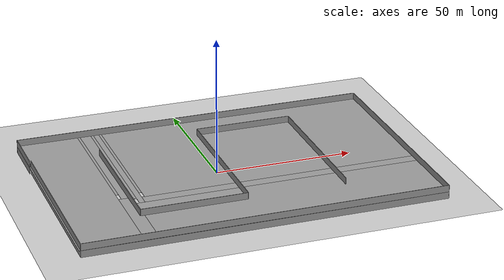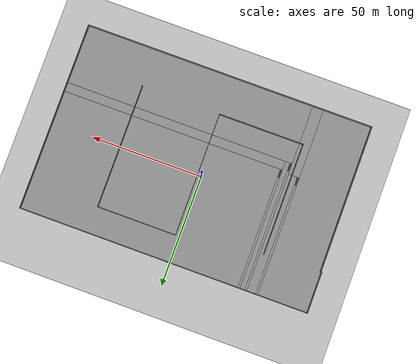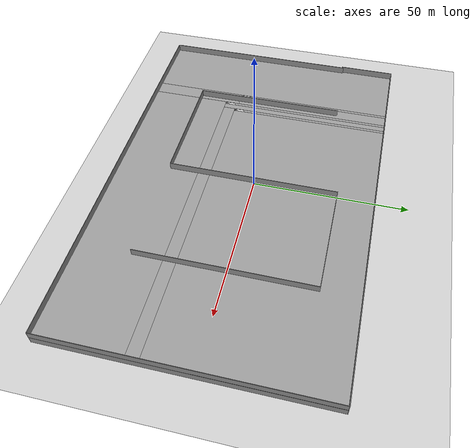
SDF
<sdf version="1.7">
 <world name="default">
  <light name="sun" type="directional">
   <pose>0 0 10 0 -0 0</pose>
   <diffuse>0.8 0.8 0.8 1</diffuse>
   <specular>0.2 0.2 0.2 1</specular>
   <attenuation>
    <range>1000</range>
    <constant>0.9</constant>
    <linear>0.01</linear>
    <quadratic>0.001</quadratic>
   </attenuation>
   <direction>-0.5 0.1 -0.9</direction>
   <spot><inner_angle>0</inner_angle><outer_angle>0</outer_angle><falloff>0</falloff></spot>
  </light>
  <model name="ground_plane">
   <static>1</static>
   <link name="link">
    <collision name="collision">
     <geometry><plane><normal>0 0 1</normal><size>100 100</size></plane></geometry>
     <surface><friction><ode><mu>100</mu><mu2>50</mu2></ode></friction></surface>
    </collision>
    <visual name="visual">
     <cast_shadows>0</cast_shadows>
     <geometry><plane><normal>0 0 1</normal><size>100 100</size></plane></geometry>
     <material>
      <script><uri>file://media/materials/scripts/gazebo.material</uri><name>Gazebo/Grey</name></script>
     </material>
    </visual>
   </link>
  </model>
  <gravity>0 0 -9.8</gravity>
  <magnetic_field>6e-06 2.3e-05 -4.2e-05</magnetic_field>
  <atmosphere type="adiabatic"/>
  <physics type="ode">
   <max_step_size>0.001</max_step_size>
   <real_time_factor>1</real_time_factor>
   <real_time_update_rate>1000</real_time_update_rate>
  </physics>
  <scene><ambient>0.4 0.4 0.4 1</ambient><background>0.7 0.7 0.7 1</background><shadows>1</shadows></scene>
  <audio><device>default</device></audio>
  <spherical_coordinates>
   <surface_model>EARTH_WGS84</surface_model>
   <latitude_deg>0</latitude_deg>
   <longitude_deg>0</longitude_deg>
   <elevation>0</elevation>
   <heading_deg>0</heading_deg>
  </spherical_coordinates>
  <model name="play">
   <pose>3.04218 -2.837 0 0 -0 0</pose>
   <link name="Floor_1">
    <pose>-2e-06 0 2.5 0 -0 0</pose>
    <visual name="Floor_1_Visual_0">
     <pose>-54.0036 0 0.05 0 -0 0</pose>
     <geometry><box><size>22.2427 84.25 0.1</size></box></geometry>
     <material>
      <script><uri>file://media/materials/scripts/gazebo.material</uri><name>Gazebo/Grey</name></script>
      <ambient>1 1 1 1</ambient>
     </material>
     <meta><layer>1</layer></meta>
    </visual>
    <collision name="Floor_1_Collision_0">
     <geometry><box><size>22.2427 84.25 0.1</size></box></geometry>
     <pose>-54.0036 0 0.05 0 -0 0</pose>
    </collision>
    <visual name="Floor_1_Visual_1">
     <pose>-40.3931 -26.5254 0.05 0 -0 0</pose>
     <geometry><box><size>4.97829 31.1992 0.1</size></box></geometry>
     <material>
      <script><uri>file://media/materials/scripts/gazebo.material</uri><name>Gazebo/Grey</name></script>
      <ambient>1 1 1 1</ambient>
     </material>
     <meta><layer>1</layer></meta>
    </visual>
    <collision name="Floor_1_Collision_1">
     <geometry><box><size>4.97829 31.1992 0.1</size></box></geometry>
     <pose>-40.3931 -26.5254 0.05 0 -0 0</pose>
    </collision>
    <visual name="Floor_1_Visual_2">
     <pose>13.6105 -28.8901 0.05 0 -0 0</pose>
     <geometry><box><size>103.029 26.4698 0.1</size></box></geometry>
     <material>
      <script><uri>file://media/materials/scripts/gazebo.material</uri><name>Gazebo/Grey</name></script>
      <ambient>1 1 1 1</ambient>
     </material>
     <meta><layer>1</layer></meta>
    </visual>
    <collision name="Floor_1_Collision_2">
     <geometry><box><size>103.029 26.4698 0.1</size></box></geometry>
     <pose>13.6105 -28.8901 0.05 0 -0 0</pose>
    </collision>
    <visual name="Floor_1_Visual_3">
     <pose>-35.9105 13.2349 0.05 0 -0 0</pose>
     <geometry><box><size>1.98698 57.7802 0.1</size></box></geometry>
     <material>
      <script><uri>file://media/materials/scripts/gazebo.material</uri><name>Gazebo/Grey</name></script>
      <ambient>1 1 1 1</ambient>
     </material>
     <meta><layer>1</layer></meta>
    </visual>
    <collision name="Floor_1_Collision_3">
     <geometry><box><size>1.98698 57.7802 0.1</size></box></geometry>
     <pose>-35.9105 13.2349 0.05 0 -0 0</pose>
    </collision>
    <visual name="Floor_1_Visual_4">
     <pose>15.104 -13.6639 0.05 0 -0 0</pose>
     <geometry><box><size>100.042 3.98263 0.1</size></box></geometry>
     <material>
      <script><uri>file://media/materials/scripts/gazebo.material</uri><name>Gazebo/Grey</name></script>
      <ambient>1 1 1 1</ambient>
     </material>
     <meta><layer>1</layer></meta>
    </visual>
    <collision name="Floor_1_Collision_4">
     <geometry><box><size>100.042 3.98263 0.1</size></box></geometry>
     <pose>15.104 -13.6639 0.05 0 -0 0</pose>
    </collision>
    <visual name="Floor_1_Visual_5">
     <pose>-37.404 14.9849 0.05 0 -0 0</pose>
     <geometry><box><size>1 54.2802 0.1</size></box></geometry>
     <material>
      <script><uri>file://media/materials/scripts/gazebo.material</uri><name>Gazebo/Grey</name></script>
      <ambient>1 1 1 1</ambient>
     </material>
     <meta><layer>1</layer></meta>
    </visual>
    <collision name="Floor_1_Collision_5">
     <geometry><box><size>1 54.2802 0.1</size></box></geometry>
     <pose>-37.404 14.9849 0.05 0 -0 0</pose>
    </collision>
    <visual name="Floor_1_Visual_6">
     <pose>15.604 15.2262 0.05 0 -0 0</pose>
     <geometry><box><size>99.042 53.7976 0.1</size></box></geometry>
     <material>
      <script><uri>file://media/materials/scripts/gazebo.material</uri><name>Gazebo/Grey</name></script>
      <ambient>1 1 1 1</ambient>
     </material>
     <meta><layer>1</layer></meta>
    </visual>
    <collision name="Floor_1_Collision_6">
     <geometry><box><size>99.042 53.7976 0.1</size></box></geometry>
     <pose>15.604 15.2262 0.05 0 -0 0</pose>
    </collision>
    <visual name="Floor_1_Visual_7">
     <pose>-39.8931 15.5996 0.05 0 -0 0</pose>
     <geometry><box><size>3.97829 53.0508 0.1</size></box></geometry>
     <material>
      <script><uri>file://media/materials/scripts/gazebo.material</uri><name>Gazebo/Grey</name></script>
      <ambient>1 1 1 1</ambient>
     </material>
     <meta><layer>1</layer></meta>
    </visual>
    <collision name="Floor_1_Collision_7">
     <geometry><box><size>3.97829 53.0508 0.1</size></box></geometry>
     <pose>-39.8931 15.5996 0.05 0 -0 0</pose>
    </collision>
    <visual name="Floor_1_Visual_8">
     <pose>-34.417 16.9762 0.05 0 -0 0</pose>
     <geometry><box><size>1 50.2976 0.1</size></box></geometry>
     <material>
      <script><uri>file://media/materials/scripts/gazebo.material</uri><name>Gazebo/Grey</name></script>
      <ambient>1 1 1 1</ambient>
     </material>
     <meta><layer>1</layer></meta>
    </visual>
    <collision name="Floor_1_Collision_8">
     <geometry><box><size>1 50.2976 0.1</size></box></geometry>
     <pose>-34.417 16.9762 0.05 0 -0 0</pose>
    </collision>
    <visual name="Floor_1_Visual_9">
     <pose>-42.3823 17.3496 0.05 0 -0 0</pose>
     <geometry><box><size>1 49.5508 0.1</size></box></geometry>
     <material>
      <script><uri>file://media/materials/scripts/gazebo.material</uri><name>Gazebo/Grey</name></script>
      <ambient>1 1 1 1</ambient>
     </material>
     <meta><layer>1</layer></meta>
    </visual>
    <collision name="Floor_1_Collision_9">
     <geometry><box><size>1 49.5508 0.1</size></box></geometry>
     <pose>-42.3823 17.3496 0.05 0 -0 0</pose>
    </collision>
   </link>
   <link name="Stairs_0">
    <visual name="Stairs_0_Visual_0">
     <pose>-34.417 -8.28924 0.083333 0 -0 0</pose>
     <geometry><box><size>1 0.233333 0.166667</size></box></geometry>
     <material>
      <script><uri>file://media/materials/scripts/gazebo.material</uri><name>Gazebo/Grey</name></script>
      <ambient>1 1 1 1</ambient>
     </material>
     <meta><layer>0</layer></meta>
    </visual>
    <collision name="Stairs_0_Collision_0">
     <geometry><box><size>1 0.233333 0.166667</size></box></geometry>
     <pose>-34.417 -8.28924 0.083333 0 -0 0</pose>
    </collision>
    <visual name="Stairs_0_Visual_1">
     <pose>-34.417 -8.52257 0.25 0 -0 0</pose>
     <geometry><box><size>1 0.233333 0.166667</size></box></geometry>
     <material>
      <script><uri>file://media/materials/scripts/gazebo.material</uri><name>Gazebo/Grey</name></script>
      <ambient>1 1 1 1</ambient>
     </material>
     <meta><layer>0</layer></meta>
    </visual>
    <collision name="Stairs_0_Collision_1">
     <geometry><box><size>1 0.233333 0.166667</size></box></geometry>
     <pose>-34.417 -8.52257 0.25 0 -0 0</pose>
    </collision>
    <visual name="Stairs_0_Visual_2">
     <pose>-34.417 -8.7559 0.416667 0 -0 0</pose>
     <geometry><box><size>1 0.233333 0.166667</size></box></geometry>
     <material>
      <script><uri>file://media/materials/scripts/gazebo.material</uri><name>Gazebo/Grey</name></script>
      <ambient>1 1 1 1</ambient>
     </material>
     <meta><layer>0</layer></meta>
    </visual>
    <collision name="Stairs_0_Collision_2">
     <geometry><box><size>1 0.233333 0.166667</size></box></geometry>
     <pose>-34.417 -8.7559 0.416667 0 -0 0</pose>
    </collision>
    <visual name="Stairs_0_Visual_3">
     <pose>-34.417 -8.98924 0.583333 0 -0 0</pose>
     <geometry><box><size>1 0.233333 0.166667</size></box></geometry>
     <material>
      <script><uri>file://media/materials/scripts/gazebo.material</uri><name>Gazebo/Grey</name></script>
      <ambient>1 1 1 1</ambient>
     </material>
     <meta><layer>0</layer></meta>
    </visual>
    <collision name="Stairs_0_Collision_3">
     <geometry><box><size>1 0.233333 0.166667</size></box></geometry>
     <pose>-34.417 -8.98924 0.583333 0 -0 0</pose>
    </collision>
    <visual name="Stairs_0_Visual_4">
     <pose>-34.417 -9.22257 0.75 0 -0 0</pose>
     <geometry><box><size>1 0.233333 0.166667</size></box></geometry>
     <material>
      <script><uri>file://media/materials/scripts/gazebo.material</uri><name>Gazebo/Grey</name></script>
      <ambient>1 1 1 1</ambient>
     </material>
     <meta><layer>0</layer></meta>
    </visual>
    <collision name="Stairs_0_Collision_4">
     <geometry><box><size>1 0.233333 0.166667</size></box></geometry>
     <pose>-34.417 -9.22257 0.75 0 -0 0</pose>
    </collision>
    <visual name="Stairs_0_Visual_5">
     <pose>-34.417 -9.4559 0.916667 0 -0 0</pose>
     <geometry><box><size>1 0.233333 0.166667</size></box></geometry>
     <material>
      <script><uri>file://media/materials/scripts/gazebo.material</uri><name>Gazebo/Grey</name></script>
      <ambient>1 1 1 1</ambient>
     </material>
     <meta><layer>0</layer></meta>
    </visual>
    <collision name="Stairs_0_Collision_5">
     <geometry><box><size>1 0.233333 0.166667</size></box></geometry>
     <pose>-34.417 -9.4559 0.916667 0 -0 0</pose>
    </collision>
    <visual name="Stairs_0_Visual_6">
     <pose>-34.417 -9.68924 1.08333 0 -0 0</pose>
     <geometry><box><size>1 0.233333 0.166667</size></box></geometry>
     <material>
      <script><uri>file://media/materials/scripts/gazebo.material</uri><name>Gazebo/Grey</name></script>
      <ambient>1 1 1 1</ambient>
     </material>
     <meta><layer>0</layer></meta>
    </visual>
    <collision name="Stairs_0_Collision_6">
     <geometry><box><size>1 0.233333 0.166667</size></box></geometry>
     <pose>-34.417 -9.68924 1.08333 0 -0 0</pose>
    </collision>
    <visual name="Stairs_0_Visual_7">
     <pose>-34.417 -9.92257 1.25 0 -0 0</pose>
     <geometry><box><size>1 0.233333 0.166667</size></box></geometry>
     <material>
      <script><uri>file://media/materials/scripts/gazebo.material</uri><name>Gazebo/Grey</name></script>
      <ambient>1 1 1 1</ambient>
     </material>
     <meta><layer>0</layer></meta>
    </visual>
    <collision name="Stairs_0_Collision_7">
     <geometry><box><size>1 0.233333 0.166667</size></box></geometry>
     <pose>-34.417 -9.92257 1.25 0 -0 0</pose>
    </collision>
    <visual name="Stairs_0_Visual_8">
     <pose>-34.417 -10.1559 1.41667 0 -0 0</pose>
     <geometry><box><size>1 0.233333 0.166667</size></box></geometry>
     <material>
      <script><uri>file://media/materials/scripts/gazebo.material</uri><name>Gazebo/Grey</name></script>
      <ambient>1 1 1 1</ambient>
     </material>
     <meta><layer>0</layer></meta>
    </visual>
    <collision name="Stairs_0_Collision_8">
     <geometry><box><size>1 0.233333 0.166667</size></box></geometry>
     <pose>-34.417 -10.1559 1.41667 0 -0 0</pose>
    </collision>
    <visual name="Stairs_0_Visual_9">
     <pose>-34.417 -10.3892 1.58333 0 -0 0</pose>
     <geometry><box><size>1 0.233333 0.166667</size></box></geometry>
     <material>
      <script><uri>file://media/materials/scripts/gazebo.material</uri><name>Gazebo/Grey</name></script>
      <ambient>1 1 1 1</ambient>
     </material>
     <meta><layer>0</layer></meta>
    </visual>
    <collision name="Stairs_0_Collision_9">
     <geometry><box><size>1 0.233333 0.166667</size></box></geometry>
     <pose>-34.417 -10.3892 1.58333 0 -0 0</pose>
    </collision>
    <visual name="Stairs_0_Visual_10">
     <pose>-34.417 -10.6226 1.75 0 -0 0</pose>
     <geometry><box><size>1 0.233333 0.166667</size></box></geometry>
     <material>
      <script><uri>file://media/materials/scripts/gazebo.material</uri><name>Gazebo/Grey</name></script>
      <ambient>1 1 1 1</ambient>
     </material>
     <meta><layer>0</layer></meta>
    </visual>
    <collision name="Stairs_0_Collision_10">
     <geometry><box><size>1 0.233333 0.166667</size></box></geometry>
     <pose>-34.417 -10.6226 1.75 0 -0 0</pose>
    </collision>
    <visual name="Stairs_0_Visual_11">
     <pose>-34.417 -10.8559 1.91667 0 -0 0</pose>
     <geometry><box><size>1 0.233333 0.166667</size></box></geometry>
     <material>
      <script><uri>file://media/materials/scripts/gazebo.material</uri><name>Gazebo/Grey</name></script>
      <ambient>1 1 1 1</ambient>
     </material>
     <meta><layer>0</layer></meta>
    </visual>
    <collision name="Stairs_0_Collision_11">
     <geometry><box><size>1 0.233333 0.166667</size></box></geometry>
     <pose>-34.417 -10.8559 1.91667 0 -0 0</pose>
    </collision>
    <visual name="Stairs_0_Visual_12">
     <pose>-34.417 -11.0892 2.08333 0 -0 0</pose>
     <geometry><box><size>1 0.233333 0.166667</size></box></geometry>
     <material>
      <script><uri>file://media/materials/scripts/gazebo.material</uri><name>Gazebo/Grey</name></script>
      <ambient>1 1 1 1</ambient>
     </material>
     <meta><layer>0</layer></meta>
    </visual>
    <collision name="Stairs_0_Collision_12">
     <geometry><box><size>1 0.233333 0.166667</size></box></geometry>
     <pose>-34.417 -11.0892 2.08333 0 -0 0</pose>
    </collision>
    <visual name="Stairs_0_Visual_13">
     <pose>-34.417 -11.3226 2.25 0 -0 0</pose>
     <geometry><box><size>1 0.233333 0.166667</size></box></geometry>
     <material>
      <script><uri>file://media/materials/scripts/gazebo.material</uri><name>Gazebo/Grey</name></script>
      <ambient>1 1 1 1</ambient>
     </material>
     <meta><layer>0</layer></meta>
    </visual>
    <collision name="Stairs_0_Collision_13">
     <geometry><box><size>1 0.233333 0.166667</size></box></geometry>
     <pose>-34.417 -11.3226 2.25 0 -0 0</pose>
    </collision>
    <visual name="Stairs_0_Visual_14">
     <pose>-34.417 -11.5559 2.41667 0 -0 0</pose>
     <geometry><box><size>1 0.233333 0.166667</size></box></geometry>
     <material>
      <script><uri>file://media/materials/scripts/gazebo.material</uri><name>Gazebo/Grey</name></script>
      <ambient>1 1 1 1</ambient>
     </material>
     <meta><layer>0</layer></meta>
    </visual>
    <collision name="Stairs_0_Collision_14">
     <geometry><box><size>1 0.233333 0.166667</size></box></geometry>
     <pose>-34.417 -11.5559 2.41667 0 -0 0</pose>
    </collision>
   </link>
   <link name="Stairs_1">
    <visual name="Stairs_1_Visual_0">
     <pose>-42.3823 -7.54249 0.083333 0 -0 0</pose>
     <geometry><box><size>1 0.233333 0.166667</size></box></geometry>
     <material>
      <script><uri>file://media/materials/scripts/gazebo.material</uri><name>Gazebo/Grey</name></script>
      <ambient>1 1 1 1</ambient>
     </material>
     <meta><layer>0</layer></meta>
    </visual>
    <collision name="Stairs_1_Collision_0">
     <geometry><box><size>1 0.233333 0.166667</size></box></geometry>
     <pose>-42.3823 -7.54249 0.083333 0 -0 0</pose>
    </collision>
    <visual name="Stairs_1_Visual_1">
     <pose>-42.3823 -7.77583 0.25 0 -0 0</pose>
     <geometry><box><size>1 0.233333 0.166667</size></box></geometry>
     <material>
      <script><uri>file://media/materials/scripts/gazebo.material</uri><name>Gazebo/Grey</name></script>
      <ambient>1 1 1 1</ambient>
     </material>
     <meta><layer>0</layer></meta>
    </visual>
    <collision name="Stairs_1_Collision_1">
     <geometry><box><size>1 0.233333 0.166667</size></box></geometry>
     <pose>-42.3823 -7.77583 0.25 0 -0 0</pose>
    </collision>
    <visual name="Stairs_1_Visual_2">
     <pose>-42.3823 -8.00916 0.416667 0 -0 0</pose>
     <geometry><box><size>1 0.233333 0.166667</size></box></geometry>
     <material>
      <script><uri>file://media/materials/scripts/gazebo.material</uri><name>Gazebo/Grey</name></script>
      <ambient>1 1 1 1</ambient>
     </material>
     <meta><layer>0</layer></meta>
    </visual>
    <collision name="Stairs_1_Collision_2">
     <geometry><box><size>1 0.233333 0.166667</size></box></geometry>
     <pose>-42.3823 -8.00916 0.416667 0 -0 0</pose>
    </collision>
    <visual name="Stairs_1_Visual_3">
     <pose>-42.3823 -8.24249 0.583333 0 -0 0</pose>
     <geometry><box><size>1 0.233333 0.166667</size></box></geometry>
     <material>
      <script><uri>file://media/materials/scripts/gazebo.material</uri><name>Gazebo/Grey</name></script>
      <ambient>1 1 1 1</ambient>
     </material>
     <meta><layer>0</layer></meta>
    </visual>
    <collision name="Stairs_1_Collision_3">
     <geometry><box><size>1 0.233333 0.166667</size></box></geometry>
     <pose>-42.3823 -8.24249 0.583333 0 -0 0</pose>
    </collision>
    <visual name="Stairs_1_Visual_4">
     <pose>-42.3823 -8.47583 0.75 0 -0 0</pose>
     <geometry><box><size>1 0.233333 0.166667</size></box></geometry>
     <material>
      <script><uri>file://media/materials/scripts/gazebo.material</uri><name>Gazebo/Grey</name></script>
      <ambient>1 1 1 1</ambient>
     </material>
     <meta><layer>0</layer></meta>
    </visual>
    <collision name="Stairs_1_Collision_4">
     <geometry><box><size>1 0.233333 0.166667</size></box></geometry>
     <pose>-42.3823 -8.47583 0.75 0 -0 0</pose>
    </collision>
    <visual name="Stairs_1_Visual_5">
     <pose>-42.3823 -8.70916 0.916667 0 -0 0</pose>
     <geometry><box><size>1 0.233333 0.166667</size></box></geometry>
     <material>
      <script><uri>file://media/materials/scripts/gazebo.material</uri><name>Gazebo/Grey</name></script>
      <ambient>1 1 1 1</ambient>
     </material>
     <meta><layer>0</layer></meta>
    </visual>
    <collision name="Stairs_1_Collision_5">
     <geometry><box><size>1 0.233333 0.166667</size></box></geometry>
     <pose>-42.3823 -8.70916 0.916667 0 -0 0</pose>
    </collision>
    <visual name="Stairs_1_Visual_6">
     <pose>-42.3823 -8.94249 1.08333 0 -0 0</pose>
     <geometry><box><size>1 0.233333 0.166667</size></box></geometry>
     <material>
      <script><uri>file://media/materials/scripts/gazebo.material</uri><name>Gazebo/Grey</name></script>
      <ambient>1 1 1 1</ambient>
     </material>
     <meta><layer>0</layer></meta>
    </visual>
    <collision name="Stairs_1_Collision_6">
     <geometry><box><size>1 0.233333 0.166667</size></box></geometry>
     <pose>-42.3823 -8.94249 1.08333 0 -0 0</pose>
    </collision>
    <visual name="Stairs_1_Visual_7">
     <pose>-42.3823 -9.17583 1.25 0 -0 0</pose>
     <geometry><box><size>1 0.233333 0.166667</size></box></geometry>
     <material>
      <script><uri>file://media/materials/scripts/gazebo.material</uri><name>Gazebo/Grey</name></script>
      <ambient>1 1 1 1</ambient>
     </material>
     <meta><layer>0</layer></meta>
    </visual>
    <collision name="Stairs_1_Collision_7">
     <geometry><box><size>1 0.233333 0.166667</size></box></geometry>
     <pose>-42.3823 -9.17583 1.25 0 -0 0</pose>
    </collision>
    <visual name="Stairs_1_Visual_8">
     <pose>-42.3823 -9.40916 1.41667 0 -0 0</pose>
     <geometry><box><size>1 0.233333 0.166667</size></box></geometry>
     <material>
      <script><uri>file://media/materials/scripts/gazebo.material</uri><name>Gazebo/Grey</name></script>
      <ambient>1 1 1 1</ambient>
     </material>
     <meta><layer>0</layer></meta>
    </visual>
    <collision name="Stairs_1_Collision_8">
     <geometry><box><size>1 0.233333 0.166667</size></box></geometry>
     <pose>-42.3823 -9.40916 1.41667 0 -0 0</pose>
    </collision>
    <visual name="Stairs_1_Visual_9">
     <pose>-42.3823 -9.64249 1.58333 0 -0 0</pose>
     <geometry><box><size>1 0.233333 0.166667</size></box></geometry>
     <material>
      <script><uri>file://media/materials/scripts/gazebo.material</uri><name>Gazebo/Grey</name></script>
      <ambient>1 1 1 1</ambient>
     </material>
     <meta><layer>0</layer></meta>
    </visual>
    <collision name="Stairs_1_Collision_9">
     <geometry><box><size>1 0.233333 0.166667</size></box></geometry>
     <pose>-42.3823 -9.64249 1.58333 0 -0 0</pose>
    </collision>
    <visual name="Stairs_1_Visual_10">
     <pose>-42.3823 -9.87583 1.75 0 -0 0</pose>
     <geometry><box><size>1 0.233333 0.166667</size></box></geometry>
     <material>
      <script><uri>file://media/materials/scripts/gazebo.material</uri><name>Gazebo/Grey</name></script>
      <ambient>1 1 1 1</ambient>
     </material>
     <meta><layer>0</layer></meta>
    </visual>
    <collision name="Stairs_1_Collision_10">
     <geometry><box><size>1 0.233333 0.166667</size></box></geometry>
     <pose>-42.3823 -9.87583 1.75 0 -0 0</pose>
    </collision>
    <visual name="Stairs_1_Visual_11">
     <pose>-42.3823 -10.1092 1.91667 0 -0 0</pose>
     <geometry><box><size>1 0.233333 0.166667</size></box></geometry>
     <material>
      <script><uri>file://media/materials/scripts/gazebo.material</uri><name>Gazebo/Grey</name></script>
      <ambient>1 1 1 1</ambient>
     </material>
     <meta><layer>0</layer></meta>
    </visual>
    <collision name="Stairs_1_Collision_11">
     <geometry><box><size>1 0.233333 0.166667</size></box></geometry>
     <pose>-42.3823 -10.1092 1.91667 0 -0 0</pose>
    </collision>
    <visual name="Stairs_1_Visual_12">
     <pose>-42.3823 -10.3425 2.08333 0 -0 0</pose>
     <geometry><box><size>1 0.233333 0.166667</size></box></geometry>
     <material>
      <script><uri>file://media/materials/scripts/gazebo.material</uri><name>Gazebo/Grey</name></script>
      <ambient>1 1 1 1</ambient>
     </material>
     <meta><layer>0</layer></meta>
    </visual>
    <collision name="Stairs_1_Collision_12">
     <geometry><box><size>1 0.233333 0.166667</size></box></geometry>
     <pose>-42.3823 -10.3425 2.08333 0 -0 0</pose>
    </collision>
    <visual name="Stairs_1_Visual_13">
     <pose>-42.3823 -10.5758 2.25 0 -0 0</pose>
     <geometry><box><size>1 0.233333 0.166667</size></box></geometry>
     <material>
      <script><uri>file://media/materials/scripts/gazebo.material</uri><name>Gazebo/Grey</name></script>
      <ambient>1 1 1 1</ambient>
     </material>
     <meta><layer>0</layer></meta>
    </visual>
    <collision name="Stairs_1_Collision_13">
     <geometry><box><size>1 0.233333 0.166667</size></box></geometry>
     <pose>-42.3823 -10.5758 2.25 0 -0 0</pose>
    </collision>
    <visual name="Stairs_1_Visual_14">
     <pose>-42.3823 -10.8092 2.41667 0 -0 0</pose>
     <geometry><box><size>1 0.233333 0.166667</size></box></geometry>
     <material>
      <script><uri>file://media/materials/scripts/gazebo.material</uri><name>Gazebo/Grey</name></script>
      <ambient>1 1 1 1</ambient>
     </material>
     <meta><layer>0</layer></meta>
    </visual>
    <collision name="Stairs_1_Collision_14">
     <geometry><box><size>1 0.233333 0.166667</size></box></geometry>
     <pose>-42.3823 -10.8092 2.41667 0 -0 0</pose>
    </collision>
   </link>
   <link name="Stairs_3">
    <visual name="Stairs_3_Visual_0">
     <pose>-37.404 -12.2719 0.083333 0 -0 0</pose>
     <geometry><box><size>1 0.233333 0.166667</size></box></geometry>
     <material>
      <script><uri>file://media/materials/scripts/gazebo.material</uri><name>Gazebo/Grey</name></script>
      <ambient>1 1 1 1</ambient>
     </material>
     <meta><layer>0</layer></meta>
    </visual>
    <collision name="Stairs_3_Collision_0">
     <geometry><box><size>1 0.233333 0.166667</size></box></geometry>
     <pose>-37.404 -12.2719 0.083333 0 -0 0</pose>
    </collision>
    <visual name="Stairs_3_Visual_1">
     <pose>-37.404 -12.5052 0.25 0 -0 0</pose>
     <geometry><box><size>1 0.233333 0.166667</size></box></geometry>
     <material>
      <script><uri>file://media/materials/scripts/gazebo.material</uri><name>Gazebo/Grey</name></script>
      <ambient>1 1 1 1</ambient>
     </material>
     <meta><layer>0</layer></meta>
    </visual>
    <collision name="Stairs_3_Collision_1">
     <geometry><box><size>1 0.233333 0.166667</size></box></geometry>
     <pose>-37.404 -12.5052 0.25 0 -0 0</pose>
    </collision>
    <visual name="Stairs_3_Visual_2">
     <pose>-37.404 -12.7385 0.416667 0 -0 0</pose>
     <geometry><box><size>1 0.233333 0.166667</size></box></geometry>
     <material>
      <script><uri>file://media/materials/scripts/gazebo.material</uri><name>Gazebo/Grey</name></script>
      <ambient>1 1 1 1</ambient>
     </material>
     <meta><layer>0</layer></meta>
    </visual>
    <collision name="Stairs_3_Collision_2">
     <geometry><box><size>1 0.233333 0.166667</size></box></geometry>
     <pose>-37.404 -12.7385 0.416667 0 -0 0</pose>
    </collision>
    <visual name="Stairs_3_Visual_3">
     <pose>-37.404 -12.9719 0.583333 0 -0 0</pose>
     <geometry><box><size>1 0.233333 0.166667</size></box></geometry>
     <material>
      <script><uri>file://media/materials/scripts/gazebo.material</uri><name>Gazebo/Grey</name></script>
      <ambient>1 1 1 1</ambient>
     </material>
     <meta><layer>0</layer></meta>
    </visual>
    <collision name="Stairs_3_Collision_3">
     <geometry><box><size>1 0.233333 0.166667</size></box></geometry>
     <pose>-37.404 -12.9719 0.583333 0 -0 0</pose>
    </collision>
    <visual name="Stairs_3_Visual_4">
     <pose>-37.404 -13.2052 0.75 0 -0 0</pose>
     <geometry><box><size>1 0.233333 0.166667</size></box></geometry>
     <material>
      <script><uri>file://media/materials/scripts/gazebo.material</uri><name>Gazebo/Grey</name></script>
      <ambient>1 1 1 1</ambient>
     </material>
     <meta><layer>0</layer></meta>
    </visual>
    <collision name="Stairs_3_Collision_4">
     <geometry><box><size>1 0.233333 0.166667</size></box></geometry>
     <pose>-37.404 -13.2052 0.75 0 -0 0</pose>
    </collision>
    <visual name="Stairs_3_Visual_5">
     <pose>-37.404 -13.4385 0.916667 0 -0 0</pose>
     <geometry><box><size>1 0.233333 0.166667</size></box></geometry>
     <material>
      <script><uri>file://media/materials/scripts/gazebo.material</uri><name>Gazebo/Grey</name></script>
      <ambient>1 1 1 1</ambient>
     </material>
     <meta><layer>0</layer></meta>
    </visual>
    <collision name="Stairs_3_Collision_5">
     <geometry><box><size>1 0.233333 0.166667</size></box></geometry>
     <pose>-37.404 -13.4385 0.916667 0 -0 0</pose>
    </collision>
    <visual name="Stairs_3_Visual_6">
     <pose>-37.404 -13.6719 1.08333 0 -0 0</pose>
     <geometry><box><size>1 0.233333 0.166667</size></box></geometry>
     <material>
      <script><uri>file://media/materials/scripts/gazebo.material</uri><name>Gazebo/Grey</name></script>
      <ambient>1 1 1 1</ambient>
     </material>
     <meta><layer>0</layer></meta>
    </visual>
    <collision name="Stairs_3_Collision_6">
     <geometry><box><size>1 0.233333 0.166667</size></box></geometry>
     <pose>-37.404 -13.6719 1.08333 0 -0 0</pose>
    </collision>
    <visual name="Stairs_3_Visual_7">
     <pose>-37.404 -13.9052 1.25 0 -0 0</pose>
     <geometry><box><size>1 0.233333 0.166667</size></box></geometry>
     <material>
      <script><uri>file://media/materials/scripts/gazebo.material</uri><name>Gazebo/Grey</name></script>
      <ambient>1 1 1 1</ambient>
     </material>
     <meta><layer>0</layer></meta>
    </visual>
    <collision name="Stairs_3_Collision_7">
     <geometry><box><size>1 0.233333 0.166667</size></box></geometry>
     <pose>-37.404 -13.9052 1.25 0 -0 0</pose>
    </collision>
    <visual name="Stairs_3_Visual_8">
     <pose>-37.404 -14.1385 1.41667 0 -0 0</pose>
     <geometry><box><size>1 0.233333 0.166667</size></box></geometry>
     <material>
      <script><uri>file://media/materials/scripts/gazebo.material</uri><name>Gazebo/Grey</name></script>
      <ambient>1 1 1 1</ambient>
     </material>
     <meta><layer>0</layer></meta>
    </visual>
    <collision name="Stairs_3_Collision_8">
     <geometry><box><size>1 0.233333 0.166667</size></box></geometry>
     <pose>-37.404 -14.1385 1.41667 0 -0 0</pose>
    </collision>
    <visual name="Stairs_3_Visual_9">
     <pose>-37.404 -14.3719 1.58333 0 -0 0</pose>
     <geometry><box><size>1 0.233333 0.166667</size></box></geometry>
     <material>
      <script><uri>file://media/materials/scripts/gazebo.material</uri><name>Gazebo/Grey</name></script>
      <ambient>1 1 1 1</ambient>
     </material>
     <meta><layer>0</layer></meta>
    </visual>
    <collision name="Stairs_3_Collision_9">
     <geometry><box><size>1 0.233333 0.166667</size></box></geometry>
     <pose>-37.404 -14.3719 1.58333 0 -0 0</pose>
    </collision>
    <visual name="Stairs_3_Visual_10">
     <pose>-37.404 -14.6052 1.75 0 -0 0</pose>
     <geometry><box><size>1 0.233333 0.166667</size></box></geometry>
     <material>
      <script><uri>file://media/materials/scripts/gazebo.material</uri><name>Gazebo/Grey</name></script>
      <ambient>1 1 1 1</ambient>
     </material>
     <meta><layer>0</layer></meta>
    </visual>
    <collision name="Stairs_3_Collision_10">
     <geometry><box><size>1 0.233333 0.166667</size></box></geometry>
     <pose>-37.404 -14.6052 1.75 0 -0 0</pose>
    </collision>
    <visual name="Stairs_3_Visual_11">
     <pose>-37.404 -14.8385 1.91667 0 -0 0</pose>
     <geometry><box><size>1 0.233333 0.166667</size></box></geometry>
     <material>
      <script><uri>file://media/materials/scripts/gazebo.material</uri><name>Gazebo/Grey</name></script>
      <ambient>1 1 1 1</ambient>
     </material>
     <meta><layer>0</layer></meta>
    </visual>
    <collision name="Stairs_3_Collision_11">
     <geometry><box><size>1 0.233333 0.166667</size></box></geometry>
     <pose>-37.404 -14.8385 1.91667 0 -0 0</pose>
    </collision>
    <visual name="Stairs_3_Visual_12">
     <pose>-37.404 -15.0719 2.08333 0 -0 0</pose>
     <geometry><box><size>1 0.233333 0.166667</size></box></geometry>
     <material>
      <script><uri>file://media/materials/scripts/gazebo.material</uri><name>Gazebo/Grey</name></script>
      <ambient>1 1 1 1</ambient>
     </material>
     <meta><layer>0</layer></meta>
    </visual>
    <collision name="Stairs_3_Collision_12">
     <geometry><box><size>1 0.233333 0.166667</size></box></geometry>
     <pose>-37.404 -15.0719 2.08333 0 -0 0</pose>
    </collision>
    <visual name="Stairs_3_Visual_13">
     <pose>-37.404 -15.3052 2.25 0 -0 0</pose>
     <geometry><box><size>1 0.233333 0.166667</size></box></geometry>
     <material>
      <script><uri>file://media/materials/scripts/gazebo.material</uri><name>Gazebo/Grey</name></script>
      <ambient>1 1 1 1</ambient>
     </material>
     <meta><layer>0</layer></meta>
    </visual>
    <collision name="Stairs_3_Collision_13">
     <geometry><box><size>1 0.233333 0.166667</size></box></geometry>
     <pose>-37.404 -15.3052 2.25 0 -0 0</pose>
    </collision>
    <visual name="Stairs_3_Visual_14">
     <pose>-37.404 -15.5385 2.41667 0 -0 0</pose>
     <geometry><box><size>1 0.233333 0.166667</size></box></geometry>
     <material>
      <script><uri>file://media/materials/scripts/gazebo.material</uri><name>Gazebo/Grey</name></script>
      <ambient>1 1 1 1</ambient>
     </material>
     <meta><layer>0</layer></meta>
    </visual>
    <collision name="Stairs_3_Collision_14">
     <geometry><box><size>1 0.233333 0.166667</size></box></geometry>
     <pose>-37.404 -15.5385 2.41667 0 -0 0</pose>
    </collision>
   </link>
   <link name="Wall_19">
    <collision name="Wall_19_Collision">
     <geometry><box><size>66 0.15 2.5</size></box></geometry>
     <pose>0 0 1.25 0 -0 0</pose>
    </collision>
    <visual name="Wall_19_Visual">
     <pose>0 0 1.25 0 -0 0</pose>
     <geometry><box><size>66 0.15 2.5</size></box></geometry>
     <material>
      <script><uri>file://media/materials/scripts/gazebo.material</uri><name>Gazebo/Grey</name></script>
      <ambient>1 1 1 1</ambient>
     </material>
     <meta><layer>0</layer></meta>
    </visual>
    <pose>-64.55 -9.125 0 0 -0 -1.5708</pose>
   </link>
   <link name="Wall_20">
    <collision name="Wall_20_Collision">
     <geometry><box><size>129.75 0.15 2.5</size></box></geometry>
     <pose>0 0 1.25 0 -0 0</pose>
    </collision>
    <visual name="Wall_20_Visual">
     <pose>0 0 1.25 0 -0 0</pose>
     <geometry><box><size>129.75 0.15 2.5</size></box></geometry>
     <material>
      <script><uri>file://media/materials/scripts/gazebo.material</uri><name>Gazebo/Grey</name></script>
      <ambient>1 1 1 1</ambient>
     </material>
     <meta><layer>0</layer></meta>
    </visual>
    <pose>0.249998 -42.05 0 0 -0 0</pose>
   </link>
   <link name="Wall_21">
    <collision name="Wall_21_Collision">
     <geometry><box><size>84.25 0.15 2.5</size></box></geometry>
     <pose>0 0 1.25 0 -0 0</pose>
    </collision>
    <visual name="Wall_21_Visual">
     <pose>0 0 1.25 0 -0 0</pose>
     <geometry><box><size>84.25 0.15 2.5</size></box></geometry>
     <material>
      <script><uri>file://media/materials/scripts/gazebo.material</uri><name>Gazebo/Grey</name></script>
      <ambient>1 1 1 1</ambient>
     </material>
     <meta><layer>0</layer></meta>
    </visual>
    <pose>65.05 0 0 0 -0 1.5708</pose>
   </link>
   <link name="Wall_22">
    <collision name="Wall_22_Collision">
     <geometry><box><size>130.25 0.15 2.5</size></box></geometry>
     <pose>0 0 1.25 0 -0 0</pose>
    </collision>
    <visual name="Wall_22_Visual">
     <pose>0 0 1.25 0 -0 0</pose>
     <geometry><box><size>130.25 0.15 2.5</size></box></geometry>
     <material>
      <script><uri>file://media/materials/scripts/gazebo.material</uri><name>Gazebo/Grey</name></script>
      <ambient>1 1 1 1</ambient>
     </material>
     <meta><layer>0</layer></meta>
    </visual>
    <pose>-2e-06 42.05 0 0 -0 3.14159</pose>
   </link>
   <link name="Wall_23">
    <collision name="Wall_23_Collision">
     <geometry><box><size>18.75 0.15 2.5</size></box></geometry>
     <pose>0 0 1.25 0 -0 0</pose>
    </collision>
    <visual name="Wall_23_Visual">
     <pose>0 0 1.25 0 -0 0</pose>
     <geometry><box><size>18.75 0.15 2.5</size></box></geometry>
     <material>
      <script><uri>file://media/materials/scripts/gazebo.material</uri><name>Gazebo/Grey</name></script>
      <ambient>1 1 1 1</ambient>
     </material>
     <meta><layer>0</layer></meta>
    </visual>
    <pose>-65.05 32.75 0 0 -0 -1.5708</pose>
   </link>
   <link name="Wall_25">
    <collision name="Wall_25_Collision">
     <geometry><box><size>66 0.15 2.5</size></box></geometry>
     <pose>0 0 1.25 0 -0 0</pose>
    </collision>
    <visual name="Wall_25_Visual">
     <pose>0 0 1.25 0 -0 0</pose>
     <geometry><box><size>66 0.15 2.5</size></box></geometry>
     <material>
      <script><uri>file://media/materials/scripts/gazebo.material</uri><name>Gazebo/Grey</name></script>
      <ambient>1 1 1 1</ambient>
     </material>
     <meta><layer>1</layer></meta>
    </visual>
    <pose>-64.55 -9.125 2.5 0 -0 -1.5708</pose>
   </link>
   <link name="Wall_26">
    <collision name="Wall_26_Collision">
     <geometry><box><size>129.75 0.15 2.5</size></box></geometry>
     <pose>0 0 1.25 0 -0 0</pose>
    </collision>
    <visual name="Wall_26_Visual">
     <pose>0 0 1.25 0 -0 0</pose>
     <geometry><box><size>129.75 0.15 2.5</size></box></geometry>
     <material>
      <script><uri>file://media/materials/scripts/gazebo.material</uri><name>Gazebo/Grey</name></script>
      <ambient>1 1 1 1</ambient>
     </material>
     <meta><layer>1</layer></meta>
    </visual>
    <pose>0.249998 -42.05 2.5 0 -0 0</pose>
   </link>
   <link name="Wall_27">
    <collision name="Wall_27_Collision">
     <geometry><box><size>84.25 0.15 2.5</size></box></geometry>
     <pose>0 0 1.25 0 -0 0</pose>
    </collision>
    <visual name="Wall_27_Visual">
     <pose>0 0 1.25 0 -0 0</pose>
     <geometry><box><size>84.25 0.15 2.5</size></box></geometry>
     <material>
      <script><uri>file://media/materials/scripts/gazebo.material</uri><name>Gazebo/Grey</name></script>
      <ambient>1 1 1 1</ambient>
     </material>
     <meta><layer>1</layer></meta>
    </visual>
    <pose>65.05 0 2.5 0 -0 1.5708</pose>
   </link>
   <link name="Wall_28">
    <collision name="Wall_28_Collision">
     <geometry><box><size>130.25 0.15 2.5</size></box></geometry>
     <pose>0 0 1.25 0 -0 0</pose>
    </collision>
    <visual name="Wall_28_Visual">
     <pose>0 0 1.25 0 -0 0</pose>
     <geometry><box><size>130.25 0.15 2.5</size></box></geometry>
     <material>
      <script><uri>file://media/materials/scripts/gazebo.material</uri><name>Gazebo/Grey</name></script>
      <ambient>1 1 1 1</ambient>
     </material>
     <meta><layer>1</layer></meta>
    </visual>
    <pose>-2e-06 42.05 2.5 0 -0 3.14159</pose>
   </link>
   <link name="Wall_29">
    <collision name="Wall_29_Collision">
     <geometry><box><size>18.75 0.15 2.5</size></box></geometry>
     <pose>0 0 1.25 0 -0 0</pose>
    </collision>
    <visual name="Wall_29_Visual">
     <pose>0 0 1.25 0 -0 0</pose>
     <geometry><box><size>18.75 0.15 2.5</size></box></geometry>
     <material>
      <script><uri>file://media/materials/scripts/gazebo.material</uri><name>Gazebo/Grey</name></script>
      <ambient>1 1 1 1</ambient>
     </material>
     <meta><layer>1</layer></meta>
    </visual>
    <pose>-65.05 32.75 2.5 0 -0 -1.5708</pose>
   </link>
   <link name="Wall_32">
    <collision name="Wall_32_Collision">
     <geometry><box><size>50 0.15 2.5</size></box></geometry>
     <pose>0 0 1.25 0 -0 0</pose>
    </collision>
    <visual name="Wall_32_Visual">
     <pose>0 0 1.25 0 -0 0</pose>
     <geometry><box><size>50 0.15 2.5</size></box></geometry>
     <material>
      <script><uri>file://media/materials/scripts/gazebo.material</uri><name>Gazebo/Grey</name></script>
      <ambient>1 1 1 1</ambient>
     </material>
     <meta><layer>1</layer></meta>
    </visual>
    <pose>-39.3953 0.00047 2.5 0 -0 -1.5708</pose>
   </link>
   <link name="Wall_33">
    <collision name="Wall_33_Collision">
     <geometry><box><size>38.25 0.15 2.5</size></box></geometry>
     <pose>0 0 1.25 0 -0 0</pose>
    </collision>
    <visual name="Wall_33_Visual">
     <pose>0 0 1.25 0 -0 0</pose>
     <geometry><box><size>38.25 0.15 2.5</size></box></geometry>
     <material>
      <script><uri>file://media/materials/scripts/gazebo.material</uri><name>Gazebo/Grey</name></script>
      <ambient>1 1 1 1</ambient>
     </material>
     <meta><layer>1</layer></meta>
    </visual>
    <pose>-20.3453 -24.9245 2.5 0 -0 0</pose>
   </link>
   <link name="Wall_34">
    <collision name="Wall_34_Collision">
     <geometry><box><size>55.25 0.15 2.5</size></box></geometry>
     <pose>0 0 1.25 0 -0 0</pose>
    </collision>
    <visual name="Wall_34_Visual">
     <pose>0 0 1.25 0 -0 0</pose>
     <geometry><box><size>55.25 0.15 2.5</size></box></geometry>
     <material>
      <script><uri>file://media/materials/scripts/gazebo.material</uri><name>Gazebo/Grey</name></script>
      <ambient>1 1 1 1</ambient>
     </material>
     <meta><layer>1</layer></meta>
    </visual>
    <pose>-1.2953 2.62547 2.5 0 -0 1.5708</pose>
   </link>
   <link name="Wall_35">
    <collision name="Wall_35_Collision">
     <geometry><box><size>35.5 0.15 2.5</size></box></geometry>
     <pose>0 0 1.25 0 -0 0</pose>
    </collision>
    <visual name="Wall_35_Visual">
     <pose>0 0 1.25 0 -0 0</pose>
     <geometry><box><size>35.5 0.15 2.5</size></box></geometry>
     <material>
      <script><uri>file://media/materials/scripts/gazebo.material</uri><name>Gazebo/Grey</name></script>
      <ambient>1 1 1 1</ambient>
     </material>
     <meta><layer>1</layer></meta>
    </visual>
    <pose>16.3797 30.1755 2.5 0 -0 0</pose>
   </link>
   <link name="Wall_36">
    <collision name="Wall_36_Collision">
     <geometry><box><size>55.5 0.15 2.5</size></box></geometry>
     <pose>0 0 1.25 0 -0 0</pose>
    </collision>
    <visual name="Wall_36_Visual">
     <pose>0 0 1.25 0 -0 0</pose>
     <geometry><box><size>55.5 0.15 2.5</size></box></geometry>
     <material>
      <script><uri>file://media/materials/scripts/gazebo.material</uri><name>Gazebo/Grey</name></script>
      <ambient>1 1 1 1</ambient>
     </material>
     <meta><layer>1</layer></meta>
    </visual>
    <pose>34.0547 2.50047 2.5 0 -0 -1.5708</pose>
   </link>
   <static>1</static>
  </model>
  <light name="sun" type="directional">
   <pose>-30.941 35.5987 10 0 -0 0</pose>
   <diffuse>0.8 0.8 0.8 1</diffuse>
   <specular>0.2 0.2 0.2 1</specular>
   <attenuation>
    <range>1000</range>
    <constant>0.9</constant>
    <linear>0.01</linear>
    <quadratic>0.001</quadratic>
   </attenuation>
   <direction>-0.5 0.1 -0.9</direction>
  </light>
  <light name="sun" type="directional">
   <pose>-11.9159 13.8087 10 0 -0 0</pose>
   <diffuse>0.8 0.8 0.8 1</diffuse>
   <specular>0.2 0.2 0.2 1</specular>
   <attenuation>
    <range>1000</range>
    <constant>0.9</constant>
    <linear>0.01</linear>
    <quadratic>0.001</quadratic>
   </attenuation>
   <direction>-0.5 0.1 -0.9</direction>
  </light>
  <light name="sun" type="directional">
   <pose>-29.502 37.5453 10 0 -0 0</pose>
   <diffuse>0.8 0.8 0.8 1</diffuse>
   <specular>0.2 0.2 0.2 1</specular>
   <attenuation>
    <range>1000</range>
    <constant>0.9</constant>
    <linear>0.01</linear>
    <quadratic>0.001</quadratic>
   </attenuation>
   <direction>-0.5 0.1 -0.9</direction>
  </light>
  <light name="user_point_light_0" type="point">
   <pose>4.9115 15.8523 1 0 -0 0</pose>
   <diffuse>0.5 0.5 0.5 1</diffuse>
   <specular>0.1 0.1 0.1 1</specular>
   <attenuation>
    <range>20</range>
    <constant>0.5</constant>
    <linear>0.01</linear>
    <quadratic>0.001</quadratic>
   </attenuation>
   <cast_shadows>0</cast_shadows>
   <direction>0 0 -1</direction>
  </light>
 </world>
</sdf>
